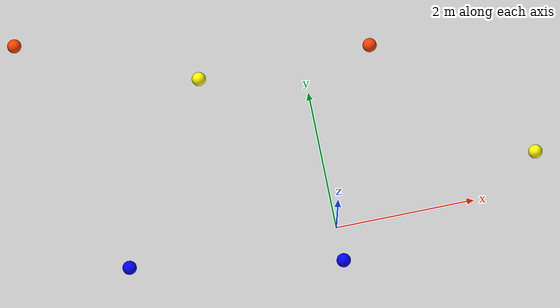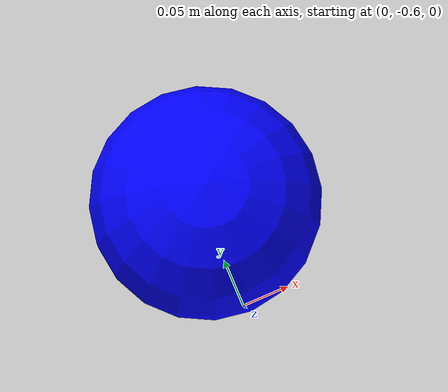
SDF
<sdf version="1.8">
 <world name="ball_world">
  <physics name="1ms" type="ignored">
   <max_step_size>0.001</max_step_size>
   <real_time_factor>1.0</real_time_factor>
  </physics>
  <plugin filename="libignition-gazebo-physics-system.so" name="ignition::gazebo::systems::Physics"/>
  <plugin filename="libignition-gazebo-user-commands-system.so" name="ignition::gazebo::systems::UserCommands"/>
  <plugin filename="libignition-gazebo-scene-broadcaster-system.so" name="ignition::gazebo::systems::SceneBroadcaster"/>
  <scene><ambient>1.0 1.0 1.0</ambient><background>0.8 0.8 0.8</background><grid>true</grid></scene>
  <light type="directional" name="sun">
   <pose>0 0 10 0 0 0</pose>
   <diffuse>0.8 0.8 0.8 1</diffuse>
   <specular>0.2 0.2 0.2 1</specular>
   <attenuation>
    <range>1000</range>
    <constant>0.9</constant>
    <linear>0.01</linear>
    <quadratic>0.001</quadratic>
   </attenuation>
   <direction>-0.5 0.1 -0.9</direction>
  </light>
  <model name="ground_plane">
   <static>true</static>
   <link name="link">
    <collision name="collision"><geometry><plane><normal>0 0 1</normal></plane></geometry></collision>
    <visual name="visual">
     <geometry><plane><normal>0 0 1</normal><size>100 100</size></plane></geometry>
     <material>
      <ambient>0.8 0.8 0.8 1</ambient>
      <diffuse>0.8 0.8 0.8 1</diffuse>
      <specular>0.8 0.8 0.8 1</specular>
     </material>
    </visual>
   </link>
  </model>
  <model name="ball_1">
   <link name="sphere">
    <visual name="visual">
     <geometry><sphere><radius>0.1</radius></sphere></geometry>
     <material>
      <ambient>0.0 0.0 1.0 1.0</ambient>
      <diffuse>0.0 0.0 1.0 1.0</diffuse>
      <specular>0.0 0.0 0.0 1.0</specular>
     </material>
    </visual>
    <collision name="collision"><geometry><sphere><radius>0.1</radius></sphere></geometry></collision>
   </link>
   <pose>-3.0 0 0.1 0 0 0</pose>
  </model>
  <model name="ball_2">
   <link name="sphere">
    <visual name="visual">
     <geometry><sphere><radius>0.1</radius></sphere></geometry>
     <material>
      <ambient>1.0 0.25 0.0 1.0</ambient>
      <diffuse>1.0 0.25 0.0 1.0</diffuse>
      <specular>0.0 0.0 0.0 1.0</specular>
     </material>
    </visual>
    <collision name="collision"><geometry><sphere><radius>0.1</radius></sphere></geometry></collision>
   </link>
   <pose>-4 3.5 0.1 0 0 0</pose>
  </model>
  <model name="ball_3">
   <link name="sphere">
    <visual name="visual">
     <geometry><sphere><radius>0.1</radius></sphere></geometry>
     <material>
      <ambient>1.0 1.0 0.0 1.0</ambient>
      <diffuse>1.0 1.0 0.0 1.0</diffuse>
      <specular>0.0 0.0 0.0 1.0</specular>
     </material>
    </visual>
    <collision name="collision"><geometry><sphere><radius>0.1</radius></sphere></geometry></collision>
   </link>
   <pose>-1.5 2.5 0.1 0 0 0</pose>
  </model>
  <model name="ball_4">
   <link name="sphere">
    <visual name="visual">
     <geometry><sphere><radius>0.1</radius></sphere></geometry>
     <material>
      <ambient>1.0 0.25 0.0 1.0</ambient>
      <diffuse>1.0 0.25 0.0 1.0</diffuse>
      <specular>0.0 0.0 0.0 1.0</specular>
     </material>
    </visual>
    <collision name="collision"><geometry><sphere><radius>0.1</radius></sphere></geometry></collision>
   </link>
   <pose>1 2.5 0.1 0 0 0</pose>
  </model>
  <model name="ball_5">
   <link name="sphere">
    <visual name="visual">
     <geometry><sphere><radius>0.1</radius></sphere></geometry>
     <material>
      <ambient>0.0 0.0 1.0 1.0</ambient>
      <diffuse>0.0 0.0 1.0 1.0</diffuse>
      <specular>0.0 0.0 0.0 1.0</specular>
     </material>
    </visual>
    <collision name="collision"><geometry><sphere><radius>0.1</radius></sphere></geometry></collision>
   </link>
   <pose>0 -0.5 0.1 0 0 0</pose>
  </model>
  <model name="ball_6">
   <link name="sphere">
    <visual name="visual">
     <geometry><sphere><radius>0.1</radius></sphere></geometry>
     <material>
      <ambient>1.0 1.0 0.0 1.0</ambient>
      <diffuse>1.0 1.0 0.0 1.0</diffuse>
      <specular>0.0 0.0 0.0 1.0</specular>
     </material>
    </visual>
    <collision name="collision"><geometry><sphere><radius>0.1</radius></sphere></geometry></collision>
   </link>
   <pose>3 0.5 0.1 0 0 0</pose>
  </model>
 </world>
</sdf>
